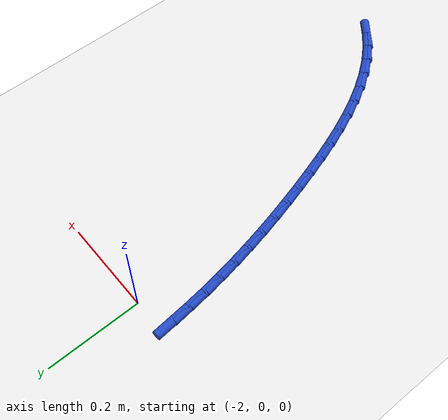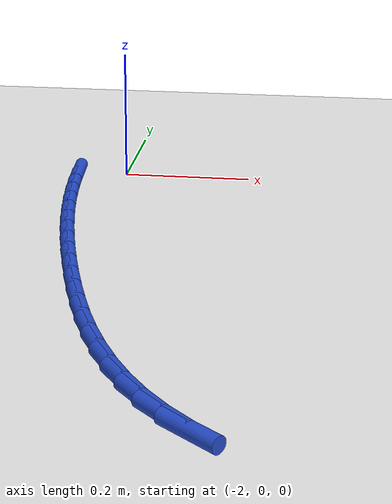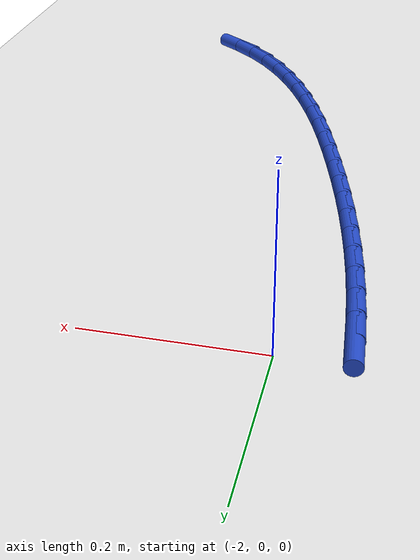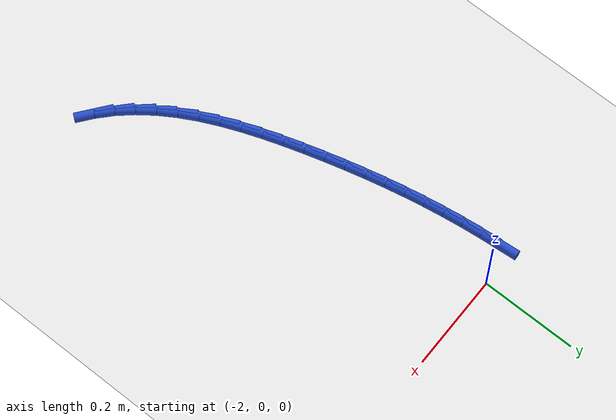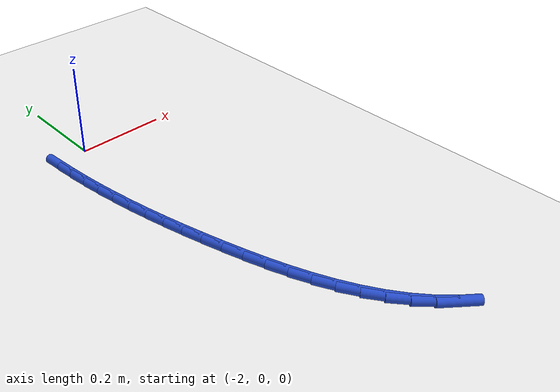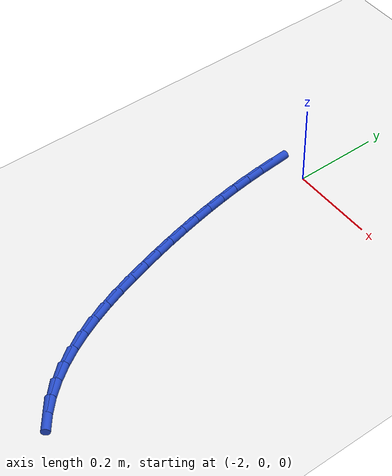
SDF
<sdf version="1.6">
 <world name="default">
  <model name="ground_plane">
   <static>1</static>
   <link name="link">
    <collision name="collision">
     <geometry><plane><normal>0 0 1</normal><size>100 100</size></plane></geometry>
     <surface><friction><ode><mu>100</mu><mu2>50</mu2></ode></friction></surface>
    </collision>
    <visual name="visual">
     <cast_shadows>0</cast_shadows>
     <geometry><plane><normal>0 0 1</normal><size>100 100</size></plane></geometry>
     <material>
      <script><uri>file://media/materials/scripts/gazebo.material</uri><name>Gazebo/WhiteGlow</name></script>
     </material>
    </visual>
   </link>
  </model>
  <model name="line">
   <link name="link_81">
    <pose>-2.0749287018912854 -0.02575300109078106 0.01 0 1.57 -1.486608699585267</pose>
    <collision name="collision">
     <geometry><cylinder><radius>0.01</radius><length>0.08</length></cylinder></geometry>
    </collision>
    <visual name="visual">
     <material>
      <script><name>Gazebo/Blue</name><uri>file://media/materials/scripts/gazebo.material</uri></script>
     </material>
     <geometry><cylinder><radius>0.01</radius><length>0.08</length></cylinder></geometry>
    </visual>
   </link>
   <link name="link_82">
    <pose>-2.0714313046720814 -0.06719769743377096 0.01 0 1.57 -1.4606410888648518</pose>
    <collision name="collision">
     <geometry><cylinder><radius>0.01</radius><length>0.08</length></cylinder></geometry>
    </collision>
    <visual name="visual">
     <material>
      <script><name>Gazebo/Blue</name><uri>file://media/materials/scripts/gazebo.material</uri></script>
     </material>
     <geometry><cylinder><radius>0.01</radius><length>0.08</length></cylinder></geometry>
    </visual>
   </link>
   <link name="link_83">
    <pose>-2.0668412010880224 -0.1086984279030591 0.01 0 1.57 -1.4358195977456463</pose>
    <collision name="collision">
     <geometry><cylinder><radius>0.01</radius><length>0.08</length></cylinder></geometry>
    </collision>
    <visual name="visual">
     <material>
      <script><name>Gazebo/Blue</name><uri>file://media/materials/scripts/gazebo.material</uri></script>
     </material>
     <geometry><cylinder><radius>0.01</radius><length>0.08</length></cylinder></geometry>
    </visual>
   </link>
   <link name="link_84">
    <pose>-2.0611983466198462 -0.15025036274270184 0.01 0 1.57 -1.412142931347738</pose>
    <collision name="collision">
     <geometry><cylinder><radius>0.01</radius><length>0.08</length></cylinder></geometry>
    </collision>
    <visual name="visual">
     <material>
      <script><name>Gazebo/Blue</name><uri>file://media/materials/scripts/gazebo.material</uri></script>
     </material>
     <geometry><cylinder><radius>0.01</radius><length>0.08</length></cylinder></geometry>
    </visual>
   </link>
   <link name="link_85">
    <pose>-2.0545426967482925 -0.191848672196755 0.01 0 1.57 -1.3896039617541622</pose>
    <collision name="collision">
     <geometry><cylinder><radius>0.01</radius><length>0.08</length></cylinder></geometry>
    </collision>
    <visual name="visual">
     <material>
      <script><name>Gazebo/Blue</name><uri>file://media/materials/scripts/gazebo.material</uri></script>
     </material>
     <geometry><cylinder><radius>0.01</radius><length>0.08</length></cylinder></geometry>
    </visual>
   </link>
   <link name="link_86">
    <pose>-2.0469142069540984 -0.23348852650927407 0.01 0 1.57 -1.3681907109621316</pose>
    <collision name="collision">
     <geometry><cylinder><radius>0.01</radius><length>0.08</length></cylinder></geometry>
    </collision>
    <visual name="visual">
     <material>
      <script><name>Gazebo/Blue</name><uri>file://media/materials/scripts/gazebo.material</uri></script>
     </material>
     <geometry><cylinder><radius>0.01</radius><length>0.08</length></cylinder></geometry>
    </visual>
   </link>
   <link name="link_87">
    <pose>-2.038352832718002 -0.2751650959243156 0.01 0 1.57 -1.3478872741241679</pose>
    <collision name="collision">
     <geometry><cylinder><radius>0.01</radius><length>0.08</length></cylinder></geometry>
    </collision>
    <visual name="visual">
     <material>
      <script><name>Gazebo/Blue</name><uri>file://media/materials/scripts/gazebo.material</uri></script>
     </material>
     <geometry><cylinder><radius>0.01</radius><length>0.08</length></cylinder></geometry>
    </visual>
   </link>
   <link name="link_88">
    <pose>-2.028898529520742 -0.3168735506859336 0.01 0 1.57 -1.3286746690948457</pose>
    <collision name="collision">
     <geometry><cylinder><radius>0.01</radius><length>0.08</length></cylinder></geometry>
    </collision>
    <visual name="visual">
     <material>
      <script><name>Gazebo/Blue</name><uri>file://media/materials/scripts/gazebo.material</uri></script>
     </material>
     <geometry><cylinder><radius>0.01</radius><length>0.08</length></cylinder></geometry>
    </visual>
   </link>
   <link name="link_89">
    <pose>-2.0185912528430565 -0.3586090610381846 0.01 0 1.57 -1.310531604447224</pose>
    <collision name="collision">
     <geometry><cylinder><radius>0.01</radius><length>0.08</length></cylinder></geometry>
    </collision>
    <visual name="visual">
     <material>
      <script><name>Gazebo/Blue</name><uri>file://media/materials/scripts/gazebo.material</uri></script>
     </material>
     <geometry><cylinder><radius>0.01</radius><length>0.08</length></cylinder></geometry>
    </visual>
   </link>
   <link name="link_90">
    <pose>-2.0074709581656838 -0.40036679722512414 0.01 0 1.57 -1.2934350695368886</pose>
    <collision name="collision">
     <geometry><cylinder><radius>0.01</radius><length>0.08</length></cylinder></geometry>
    </collision>
    <visual name="visual">
     <material>
      <script><name>Gazebo/Blue</name><uri>file://media/materials/scripts/gazebo.material</uri></script>
     </material>
     <geometry><cylinder><radius>0.01</radius><length>0.08</length></cylinder></geometry>
    </visual>
   </link>
   <link name="link_91">
    <pose>-1.9955775977976187 -0.44214192579477424 0.01 0 1.57 -1.2758681948670512</pose>
    <collision name="collision">
     <geometry><cylinder><radius>0.01</radius><length>0.08</length></cylinder></geometry>
    </collision>
    <visual name="visual">
     <material>
      <script><name>Gazebo/Blue</name><uri>file://media/materials/scripts/gazebo.material</uri></script>
     </material>
     <geometry><cylinder><radius>0.01</radius><length>0.08</length></cylinder></geometry>
    </visual>
   </link>
   <link name="link_92">
    <pose>-1.982900819572386 -0.4838709934697216 0.01 0 1.57 -1.2524369742121022</pose>
    <collision name="collision">
     <geometry><cylinder><radius>0.01</radius><length>0.08</length></cylinder></geometry>
    </collision>
    <visual name="visual">
     <material>
      <script><name>Gazebo/Blue</name><uri>file://media/materials/scripts/gazebo.material</uri></script>
     </material>
     <geometry><cylinder><radius>0.01</radius><length>0.08</length></cylinder></geometry>
    </visual>
   </link>
   <link name="link_93">
    <pose>-1.9692525388733018 -0.5252834352770618 0.01 0 1.57 -1.2216316370256157</pose>
    <collision name="collision">
     <geometry><cylinder><radius>0.01</radius><length>0.08</length></cylinder></geometry>
    </collision>
    <visual name="visual">
     <material>
      <script><name>Gazebo/Blue</name><uri>file://media/materials/scripts/gazebo.material</uri></script>
     </material>
     <geometry><cylinder><radius>0.01</radius><length>0.08</length></cylinder></geometry>
    </visual>
   </link>
   <link name="link_94">
    <pose>-1.9544054380588667 -0.5660629679843415 0.01 0 1.57 -1.1829291611264483</pose>
    <collision name="collision">
     <geometry><cylinder><radius>0.01</radius><length>0.08</length></cylinder></geometry>
    </collision>
    <visual name="visual">
     <material>
      <script><name>Gazebo/Blue</name><uri>file://media/materials/scripts/gazebo.material</uri></script>
     </material>
     <geometry><cylinder><radius>0.01</radius><length>0.08</length></cylinder></geometry>
    </visual>
   </link>
   <link name="link_95">
    <pose>-1.9381321994875778 -0.6058933083591058 0.01 0 1.57 -1.1356659048523448</pose>
    <collision name="collision">
     <geometry><cylinder><radius>0.01</radius><length>0.08</length></cylinder></geometry>
    </collision>
    <visual name="visual">
     <material>
      <script><name>Gazebo/Blue</name><uri>file://media/materials/scripts/gazebo.material</uri></script>
     </material>
     <geometry><cylinder><radius>0.01</radius><length>0.08</length></cylinder></geometry>
    </visual>
   </link>
   <link name="link_96">
    <pose>-1.9202055055179343 -0.6444581731689014 0.01 0 1.57 -1.0790903399833351</pose>
    <collision name="collision">
     <geometry><cylinder><radius>0.01</radius><length>0.08</length></cylinder></geometry>
    </collision>
    <visual name="visual">
     <material>
      <script><name>Gazebo/Blue</name><uri>file://media/materials/scripts/gazebo.material</uri></script>
     </material>
     <geometry><cylinder><radius>0.01</radius><length>0.08</length></cylinder></geometry>
    </visual>
   </link>
   <link name="link_97">
    <pose>-1.9003980385084354 -0.6814412791812717 0.01 0 1.57 -1.0124554515236661</pose>
    <collision name="collision">
     <geometry><cylinder><radius>0.01</radius><length>0.08</length></cylinder></geometry>
    </collision>
    <visual name="visual">
     <material>
      <script><name>Gazebo/Blue</name><uri>file://media/materials/scripts/gazebo.material</uri></script>
     </material>
     <geometry><cylinder><radius>0.01</radius><length>0.08</length></cylinder></geometry>
    </visual>
   </link>
   <link name="link_98">
    <pose>-1.8784824808175788 -0.7165263431637635 0.01 0 1.57 -0.9351700295805241</pose>
    <collision name="collision">
     <geometry><cylinder><radius>0.01</radius><length>0.08</length></cylinder></geometry>
    </collision>
    <visual name="visual">
     <material>
      <script><name>Gazebo/Blue</name><uri>file://media/materials/scripts/gazebo.material</uri></script>
     </material>
     <geometry><cylinder><radius>0.01</radius><length>0.08</length></cylinder></geometry>
    </visual>
   </link>
   <link name="link_99">
    <pose>-1.8542315148038644 -0.749397081883922 0.01 0 1.57 -0.8470208732091642</pose>
    <collision name="collision">
     <geometry><cylinder><radius>0.01</radius><length>0.08</length></cylinder></geometry>
    </collision>
    <visual name="visual">
     <material>
      <script><name>Gazebo/Blue</name><uri>file://media/materials/scripts/gazebo.material</uri></script>
     </material>
     <geometry><cylinder><radius>0.01</radius><length>0.08</length></cylinder></geometry>
    </visual>
   </link>
   <link name="link_100">
    <pose>-1.8274178228257898 -0.7797372121092926 0.01 0 1.57 -0.7509823137711401</pose>
    <collision name="collision">
     <geometry><cylinder><radius>0.01</radius><length>0.08</length></cylinder></geometry>
    </collision>
    <visual name="visual">
     <material>
      <script><name>Gazebo/Blue</name><uri>file://media/materials/scripts/gazebo.material</uri></script>
     </material>
     <geometry><cylinder><radius>0.01</radius><length>0.08</length></cylinder></geometry>
    </visual>
   </link>
   <link name="link_101">
    <pose>-1.797878994960557 -0.8073097281560452 0.01 0 1.57 -0.663340374149794</pose>
    <collision name="collision">
     <geometry><cylinder><radius>0.01</radius><length>0.08</length></cylinder></geometry>
    </collision>
    <visual name="visual">
     <material>
      <script><name>Gazebo/Blue</name><uri>file://media/materials/scripts/gazebo.material</uri></script>
     </material>
     <geometry><cylinder><radius>0.01</radius><length>0.08</length></cylinder></geometry>
    </visual>
   </link>
  </model>
 </world>
</sdf>
